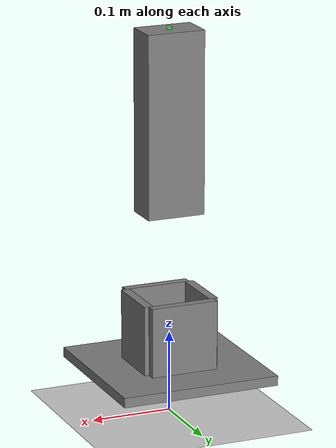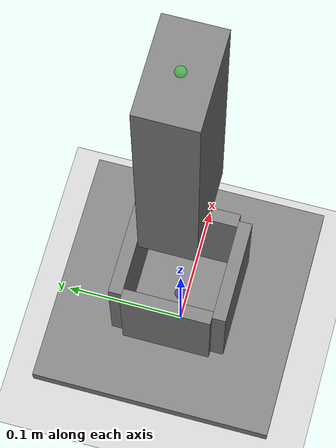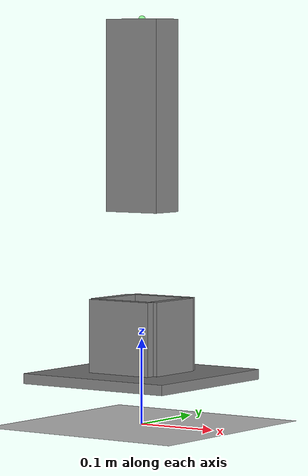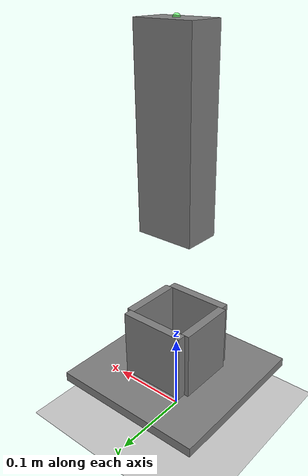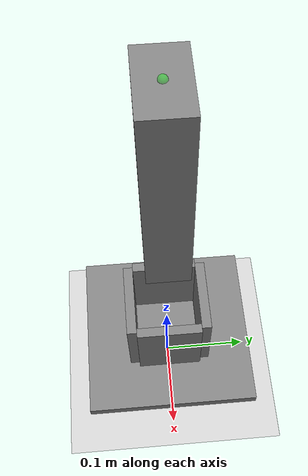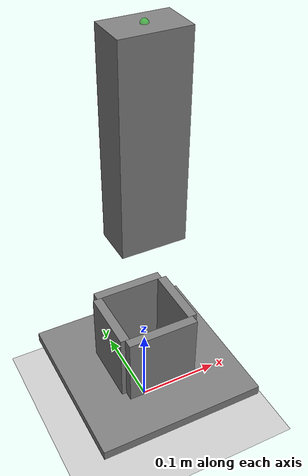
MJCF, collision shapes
<mujoco model="geometry_smoke_rectangular_16mm">
  <!-- family=rectangular_16mm; socket=rectangular_16mm; scale=4.5; collision_from_measured_mesh_not_copied_8mm -->
  <compiler angle="radian" meshdir="/" autolimits="true"/>
  <option timestep="0.002" gravity="0 0 -9.81"/>
  <visual>
    <global offwidth="640" offheight="480"/>
  </visual>
  <asset>
    <mesh name="peg_mesh" file="/home/wangrenpeng/dexjoco/dexjoco/dexjoco/sim/envs/xmls/industreal/mesh/industreal_pegs/industreal_rectangular_peg_16mm.obj" scale="4.5 4.5 4.5"/>
    <mesh name="socket_mesh" file="/home/wangrenpeng/dexjoco/dexjoco/dexjoco/sim/envs/xmls/industreal/mesh/industreal_pegs/industreal_tray_insert_rectangular_peg_16mm.obj" scale="4.5 4.5 4.5"/>
    <material name="peg_mat" rgba="0.86 0.73 0.39 1"/>
    <material name="socket_mat" rgba="0.22 0.28 0.34 1"/>
  </asset>
  <worldbody>
    <light pos="0 0 2" dir="0 0 -1"/>
    <geom name="floor" type="plane" size="1 1 0.05" rgba="0.8 0.8 0.8 1" contype="1" conaffinity="1"/>

    <body name="socket_body" pos="0 0 0.05">
      <freejoint name="socket_joint"/>
      <geom name="socket_visual" type="mesh" mesh="socket_mesh" material="socket_mat"
            contype="0" conaffinity="0" density="0" group="1"/>
      <geom name="socket_base" type="box" pos="0 0 0.006000"
            size="0.099000 0.099000 0.006000"
            friction="0.8 0.02 0.002" density="100" mass="0.05" group="3"/>
      <geom name="wall_pos_y" type="box" pos="0 0.041965 0.054100" size="0.041965 0.005474 0.044100" friction="0.8 0.02 0.002" density="100" group="3"/>
      <geom name="wall_neg_y" type="box" pos="0 -0.041965 0.054100" size="0.041965 0.005474 0.044100" friction="0.8 0.02 0.002" density="100" group="3"/>
      <geom name="wall_pos_x" type="box" pos="0.041965 0 0.054100" size="0.005474 0.036491 0.044100" friction="0.8 0.02 0.002" density="100" group="3"/>
      <geom name="wall_neg_x" type="box" pos="-0.041965 0 0.054100" size="0.005474 0.036491 0.044100" friction="0.8 0.02 0.002" density="100" group="3"/>
      <geom name="insert_bottom_contact" type="box" pos="0 0 0.003500"
            size="0.036491 0.036491 0.001500"
            friction="0.8 0.02 0.002" density="100" mass="0.01" rgba="1 0 0 0.3" group="3"/>
      <site name="socket_site" pos="0 0 0.013500" size="0.005" rgba="0 0 1 0.4"/>
    </body>

    <body name="peg_body" pos="0 0 0.25">
      <freejoint name="peg_joint"/>
      <geom name="peg_visual" type="mesh" mesh="peg_mesh" material="peg_mat"
            contype="0" conaffinity="0" density="0" group="1"/>
      <geom name="peg_collision" type="box" pos="0 0 0.112500" size="0.035903 0.022298 0.112500" friction="0.7 0.2 0.005" density="100" group="3"/>
      <site name="peg_tip_site" pos="0 0 0.225000" size="0.004" rgba="0 1 0 0.4"/>
      <site name="peg_grasp_site" pos="0 0 0.090000" size="0.005" rgba="1 0 0 0.4"/>
    </body>
  </worldbody>
</mujoco>
